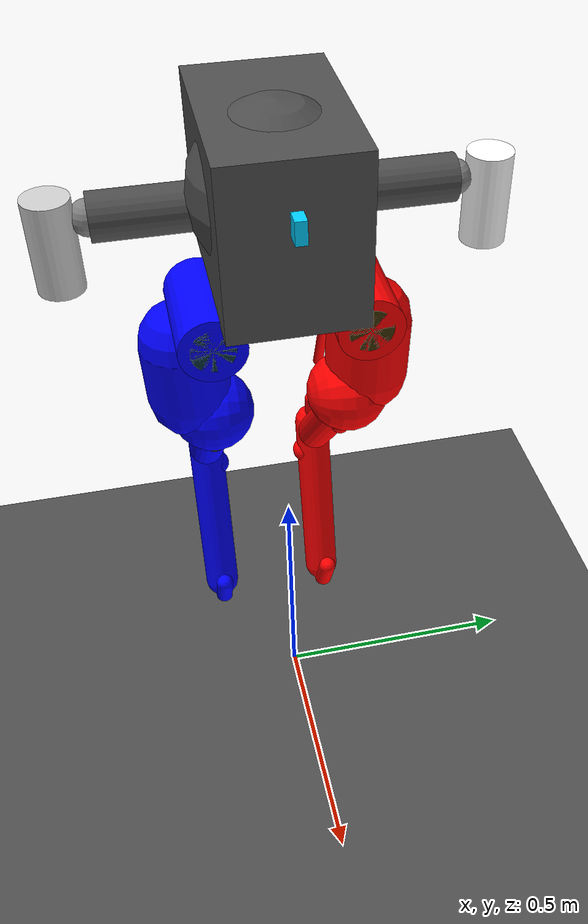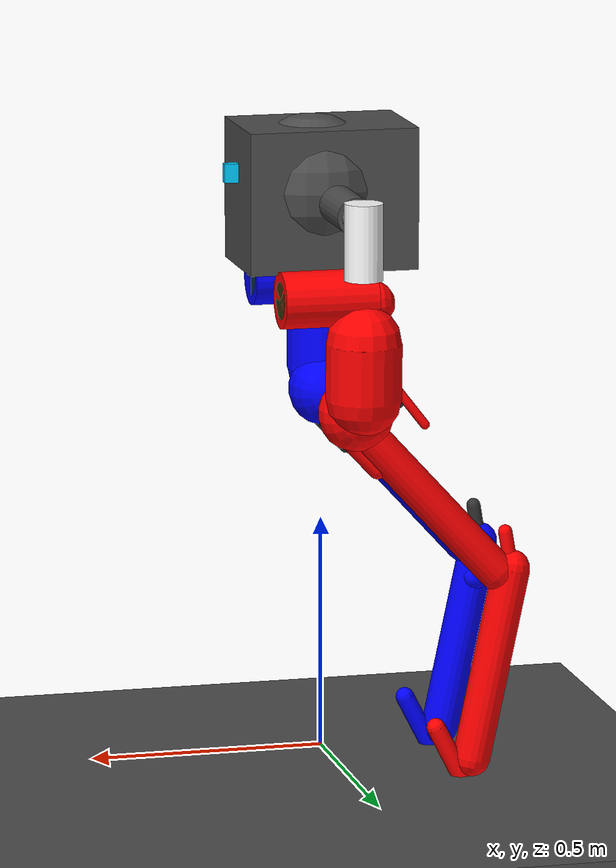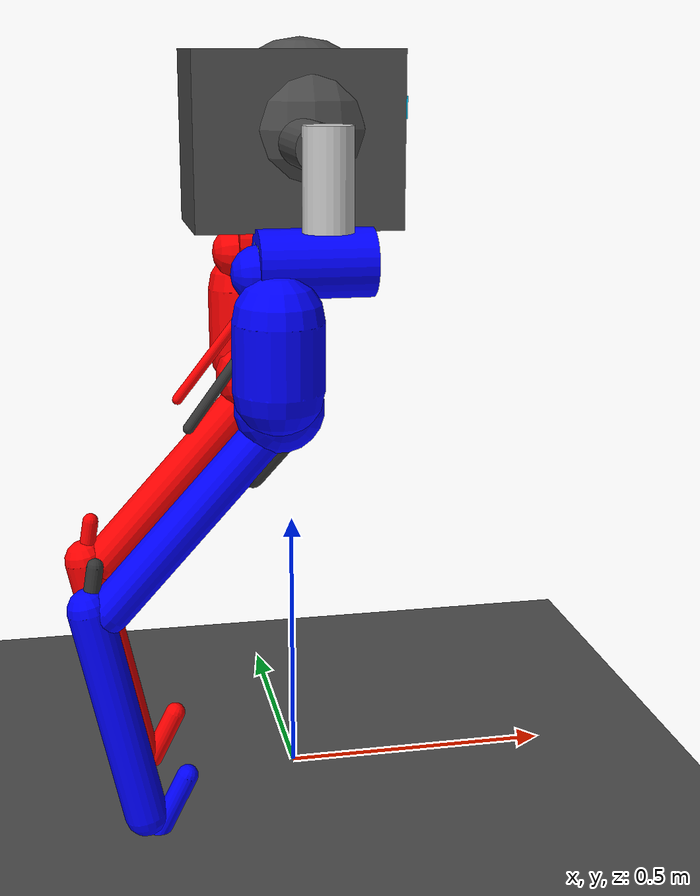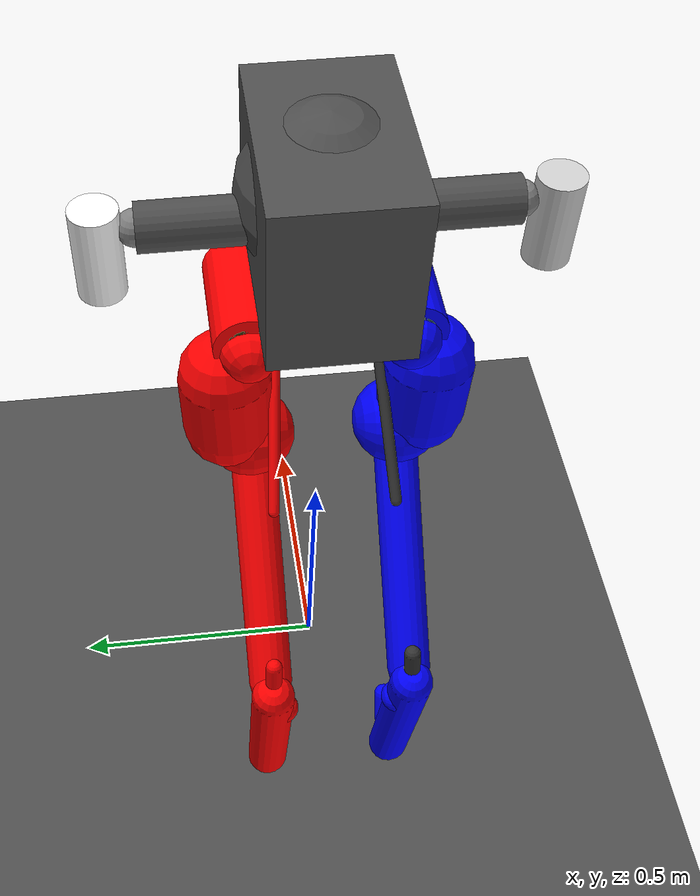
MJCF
<?xml version="1.0" ?>
<mujoco model="harpy_sophisticated_complete">
  <compiler angle="degree" coordinate="local" inertiafromgeom="true"/>
  <default>
    <joint armature="0.01" damping="0.1" limited="true"/>
    <geom conaffinity="0" condim="3" density="5.0" friction="1 0.5 0.001" rgba="0.3 0.3 0.3 1"/>
    <motor ctrllimited="true" ctrlrange="-1 1"/>
    <default class='collision'>
      <!-- User parameter for geoms is used to identify collision types -->
      <geom material='collision' contype='1' user='2'/>
    </default>
    <default class='collision_left'>
      <geom contype='2' conaffinity='4'/>
    </default>
    <default class='collision_right'>
      <geom contype='4' conaffinity='2'/>
    </default>
    <default class='obstacle'>
      <geom material='obstacle' condim='3' contype='8' conaffinity='15' user='1'/>
    </default>
  </default>

  <option gravity="0 0 -9.81" integrator="RK4" timestep="0.0005" tolerance="1e-8" solver="Newton" iterations="100" jacobian="dense"/>

  <visual>
    <global offwidth="1200" offheight="800"/>
    <quality shadowsize='4096'/>
    <map znear='0.05'/>
  </visual>

  <asset>
    <texture type='skybox' builtin='gradient' width='128' height='128' rgb1='0.4 0.6 0.8' rgb2='0 0 0'/>
    <texture name="plane" type="2d" builtin="checker" rgb1="0.2 0.2 0.2" rgb2="0.3 0.3 0.3" width="512" height="512"/>
    <material name="plane" texture="plane" texrepeat="8 8" reflectance="0.2" texuniform="true"/>
    <material name='collision' rgba='0.1 0.5 0.9 0'/>
    <material name='obstacle'  rgba='0.2 0.6 0.2 1'/>
    <hfield name="hill" nrow='512' ncol='512' size="60 60 2 1"/>
  </asset>

  <worldbody>
    <light cutoff="100" diffuse="1 1 1" dir="0 0 -1" directional="true" exponent="1" pos="0 0 4" specular="0.1 0.1 0.1"/>
    <geom name="floor" pos="0 0 -0.1" size="10 10 0.05" type="box" material="plane" condim="3" conaffinity="15" friction="1.0 0.5 0.001"/>

    <!-- Main robot body - Compact Rectangular Torso (True Harpy Design) -->
    <body name="harpy-torso" pos="0 0 1.2">
      <!-- Main torso body (compact rectangular/block structure) -->
      <inertial pos='0 0 0' mass='8.0' diaginertia='0.1 0.1 0.1'/>
      <joint type='slide' axis='1 0 0' limited='false'/>
      <joint type='slide' axis='0 1 0' limited='false'/>
      <joint type='slide' axis='0 0 1' limited='false' ref='1.2'/>
      <joint type='ball' limited='false'/>

      <!-- Main torso - compact rectangular/block structure -->
      <geom type='box' size='0.18 0.12 0.15' pos='0 0 0' rgba='0.3 0.3 0.3 1'/>

      <!-- FRONT SIDE INDICATORS -->
      <!-- Front LED strip (bright blue) -->
      <geom type='box' size='0.12 0.01 0.02' pos='0.09 0 0.05' rgba='0.0 0.8 1.0 1'/>
      <!-- Front camera/sensor housing -->
      <geom type='cylinder' size='0.03 0.02' pos='0.09 0 0' rgba='0.1 0.1 0.1 1'/>
      <!-- Front directional arrow -->
      <geom type='box' size='0.04 0.01 0.01' pos='0.08 0.03 0.02' rgba='1.0 0.3 0.3 1'/>
      <geom type='box' size='0.02 0.02 0.01' pos='0.07 0.025 0.02' rgba='1.0 0.3 0.3 1'/>

      <!-- Control system mounting points (visible details) -->
      <geom type='box' size='0.15 0.08 0.02' pos='0 0 0.06' rgba='0.1 0.4 0.1 0.8'/>
      <geom type='box' size='0.12 0.06 0.02' pos='0 0 -0.05' rgba='0.2 0.2 0.4 0.8'/>

      <geom type='sphere' size='0.15' pos='0.02 0 0.02' class='collision'/>
      <!-- IMU sensor site -->
      <site name='imu' size='0.01' pos='0 0 0'/>

      <!-- === THRUSTER MOUNTING SYSTEM (Extension bars from center) === -->

      <!-- LEFT EXTENSION BAR - connecting cylinder to left side face of torso -->
      <body name="left_extension_bar" pos="-0.15 0.12 0.0" xyaxes="1 0 0 0 0 1">
          <inertial pos="0 0 0" mass="0.3" diaginertia="0.001 0.001 0.001"/>
          <geom name="left_extension_geom" type="cylinder" size="0.04 0.18" pos="0.15 0 0" rgba="0.3 0.3 0.3 1" class='collision'/>

          <!-- LEFT THRUSTER PITCH JOINT - shoulder joint at center of far end face -->
          <body name='left-thruster-pitch' pos='0.15 0 -0.18' xyaxes='1 0 0 0 0 1'>
            <inertial pos='0 0 0' mass='0.5' diaginertia='0.001 0.001 0.001'/>
            <joint name='thruster_left_pitch' type='hinge' range='-90 90' axis="0 1 0" damping='1' armature='0.05'/>
            <!-- Shoulder joint geometry -->
            <geom type='sphere' size='0.03' pos='0 0 0' rgba='0.5 0.5 0.5 1'/>

              <!-- Thruster housing -->
              <body name="thruster_left" pos="0 0 -0.08">
                  <inertial pos="0 0 0" mass="0.3" diaginertia="0.0005 0.0005 0.0005"/>

                  <geom name="thruster_left_housing" type="cylinder"
                        size="0.04 0.08"
                        pos="0 -0.06 0.12"
                        rgba="1.0 1.0 1.0 1"
                        class="collision"/>

                  <!-- Thruster force site -->
                  <site name="thruster_left_site"
                        pos="0 -0.06 0.08"
                        size="0.01"
                        type="sphere"
                        rgba="1 0 0 0.5"/>
              </body>
          </body>
      </body>

      <!-- RIGHT EXTENSION BAR - connecting cylinder to right side face of torso -->
      <body name="right_extension_bar" pos="-0.15 -0.12 0.0" xyaxes="1 0 0 0 0 1">
          <inertial pos="0 0 0" mass="0.3" diaginertia="0.001 0.001 0.001"/>
          <geom name="right_extension_geom" type="cylinder" size="0.04 0.18" pos="0.15 0 0" rgba="0.3 0.3 0.3 1" class='collision'/>

          <!-- RIGHT THRUSTER PITCH JOINT - at far end of extension rod (away from torso) -->
          <body name="thruster_right_pitch" pos="0.15 0 0.18" xyaxes="1 0 0 0 0 1">
              <inertial pos="0 0 0" mass="0.5" diaginertia="0.001 0.001 0.001"/>
              <joint name="thruster_right_pitch" type="hinge" range="-90 90" axis="0 1 0" damping="1" armature="0.05"/>

              <!-- Shoulder joint geometry -->
              <geom type='sphere' size='0.03' pos='0 0 0' rgba='0.5 0.5 0.5 1'/>

              <!-- Thruster housing -->
              <body name="thruster_right" pos="0 0 -0.08">
                  <inertial pos="0 0 0" mass="0.3" diaginertia="0.0005 0.0005 0.0005"/>

                  <geom name="thruster_right_housing" type="cylinder"
                        size="0.04 0.08"
                        pos="0 0.06 0.12"
                        rgba="0.8 0.8 0.8 1"
                        class="collision"/>

                  <!-- Thruster force site -->
                  <site name="thruster_right_site"
                        pos="0 0.06 0.08"
                        size="0.01"
                        type="sphere"
                        rgba="1 0 0 0.5"/>
              </body>
          </body>
      </body>

      <!-- COMPLETE CASSIE LEG STRUCTURE - LEFT LEG -->
      <body name='left-hip-roll' pos='0.021 0.135 -0.2' xyaxes='0 0 -1 0 1 0'>
        <inertial pos='-0.01793 0.0001 -0.04428' mass='1.82' fullinertia='0.003431 0.003793 0.002135 -6.65e-07 -0.00084 3.99e-06'/>
        <joint name='left-hip-roll' type='hinge' range='-15 22.5' damping='1' armature='0.038125'/>
        <!-- Sophisticated hip roll geometry -->
        <geom type='cylinder' size='0.06 0.1' pos='0 0 0' rgba='1.0 0.0 0.0 1'/>
        <!-- Visible gears/internal workings -->
        <geom type='cylinder' size='0.04 0.02' pos='0 0 0.08' rgba='0.1 0.3 0.1 0.8'/>
        <geom type='cylinder' size='0.04 0.02' pos='0 0 -0.08' rgba='0.1 0.3 0.1 0.8'/>

        <body name='left-hip-yaw' pos='0 0 -0.07' xyaxes='0 0 1 0 1 0'>
          <inertial pos='0 -1e-05 -0.034277' mass='1.171' fullinertia='0.002443 0.002803 0.000842 -4e-08 2.462e-07 -2.71e-08'/>
          <joint name='left-hip-yaw' type='hinge' range='-22.5 22.5' damping='1' armature='0.038125'/>
          <!-- Sophisticated hip yaw geometry -->
          <geom type='capsule' size='0.05' fromto='-0.025 0 -0.015 0.025 0 -0.015' rgba='1.0 0.0 0.0 1'/>

          <body name='left-hip-pitch' pos='0 0 -0.09' xyaxes='0 0 -1 1 0 0'>
            <inertial pos='0.05946 5e-05 -0.03581' mass='5.52' fullinertia='0.010898 0.029714 0.030257 -0.0002669 -5.721e-05 9.17e-06'/>
            <joint name='left-hip-pitch' type='hinge' range='-50 80' damping='1' armature='0.09344'/>
            <!-- Sophisticated hip pitch geometry -->
            <geom type='capsule' size='0.08' fromto='0 0 -0.04 0.12 0 -0.0355' rgba='1.0 0.0 0.0 1' class='collision'/>

            <body name='left-achilles-rod' pos='0 0 0.045' xyaxes='0.7922 -0.60599 -0.072096 0.60349 0.79547 -0.054922'>
              <inertial pos='0.24719 0 0' mass='0.1567' fullinertia='3.754e-06 0.004487 0.004488 -3.74e-08 -1.61e-08 0'/>
              <joint name='left-achilles-rod' type='ball' limited='false' damping='0.01'/>
              <!-- Sophisticated achilles rod -->
              <geom type='capsule' size='0.01' fromto='0 0 0 0.24719 0 0' rgba='1.0 0.0 0.0 1'/>
            </body>

            <body name='left-knee' pos='0.12 0 0.0045' xyaxes='0.70711 -0.70711 0 0.70711 0.70711 0'>
              <inertial pos='0.023 0.03207 -0.002181' mass='0.7578' fullinertia='0.001376 0.0010335 0.0021637 -0.00039744 -4.085e-05 -5.374e-05'/>
              <joint name='left-knee' type='hinge' ref='-45' range='-164 -37' damping='1' armature='0.09344'/>
              <!-- Sophisticated knee joint -->
              <geom type='sphere' size='0.08' pos='0.023 0.03207 -0.002181' rgba='1.0 0.0 0.0 1'/>

              <body name='left-knee-spring' pos='0.06068 0.08241 0'>
                <inertial pos='0.0836 0.0034 0' mass='0.186' fullinertia='5.215e-05 0.00041205 0.0003669 6.87e-06 0 0'/>
                <!-- Sophisticated knee spring -->
                <geom type='capsule' size='0.02' fromto='0 0 0 0.0836 0.0034 0' rgba='1.0 0.0 0.0 1'/>
              </body>

              <body name='left-shin' pos='0.06068 0.04741 0'>
                <inertial pos='0.18338 0.001169 0.0002123' mass='0.577' fullinertia='0.00035939 0.014728 0.014707 -0.00020981 2.266e-05 -1.2e-07'/>
                <joint name='left-shin' type='hinge' range='-20 20' stiffness='1500' damping='0.1'/>
                <!-- Sophisticated shin -->
                <geom type='capsule' size='0.04' fromto='0 0 0 0.43476 0.02 0' rgba='1.0 0.0 0.0 1' class='collision'/>

                <body name='left-tarsus' pos='0.43476 0.02 0' xyaxes='0.52992 0.84805 0 -0.84805 0.52992 0'>
                  <inertial pos='0.11046 -0.03058 -0.00131' mass='0.782' fullinertia='0.00039238 0.013595 0.013674 0.00023651 -4.987e-05 -4.82e-06'/>
                  <joint name='left-tarsus' type='hinge' ref='58' range='50 170' damping='0.1'/>
                  <!-- Sophisticated tarsus -->
                  <geom type='capsule' size='0.04' fromto='-0.01269 -0.03059 0.00092 0.408 -0.04 0' rgba='1.0 0.0 0.0 1' class='collision'/>

                  <body name='left-heel-spring' pos='-0.01269 -0.03059 0.00092' xyaxes='-0.91211 0.40829 0.036948 -0.40992 -0.90952 -0.068841'>
                    <inertial pos='0.081 0.0022 0' mass='0.126' fullinertia='2.959e-05 0.00022231 0.0002007 7.15e-06 -6e-07 1e-07'/>
                    <joint name='left-heel-spring' type='hinge' limited='false' stiffness='1250'/>
                    <!-- Sophisticated heel spring -->
                    <geom type='capsule' size='0.015' fromto='0 0 0 0.081 0.0022 0' rgba='1.0 0.0 0.0 1'/>
                  </body>

                  <body name='left-foot-crank' pos='0.058 -0.034 0.02275'>
                    <inertial pos='0.00493 2e-05 -0.00215' mass='0.1261' fullinertia='2.6941e-05 4.9621e-05 6.3362e-05 -2.1e-09 -3.9623e-06 -1.09e-08'/>
                    <joint name='left-foot-crank' type='hinge' range='-140 -30' damping='1'/>
                    <!-- Sophisticated foot crank -->
                    <geom type='sphere' size='0.03' pos='0.00493 2e-05 -0.00215' rgba='1.0 0.0 0.0 1'/>

                    <body name='left-plantar-rod' pos='0.055 0 -0.00791'>
                      <inertial pos='0.17792 0 0' mass='0.1186' fullinertia='2.779e-06 0.001774 0.001775 -2.34e-08 -8.1e-09 0'/>
                      <joint name='left-plantar-rod' type='hinge' limited='false'/>
                      <!-- Sophisticated plantar rod -->
                      <geom type='capsule' size='0.008' fromto='0 0 0 0.17792 0 0' rgba='1.0 0.0 0.0 1'/>
                    </body>
                  </body>

                  <body name='left-foot' pos='0.408 -0.04 0'>
                    <inertial pos='0.00474 0.02748 -0.00014' mass='0.1498' fullinertia='0.00017388 0.00016793 0.00033261 0.00011814 1.36e-06 -4e-07'/>
                    <joint name='left-foot' type='hinge' range='-140 -30' damping='1' armature='0.01225'/>
                    <!-- Sophisticated foot -->
                    <geom type='capsule' size='0.02' fromto='-0.052821 0.092622 0 0.069746 -0.010224 0' rgba='1.0 0.0 0.0 1' friction='1.0 0.5 0.001' class='collision_left'/>
                  </body>
                </body>
              </body>
            </body>
          </body>
        </body>
      </body>

      <!-- COMPLETE CASSIE LEG STRUCTURE - RIGHT LEG -->
      <body name='right-hip-roll' pos='0.021 -0.135 -0.2' xyaxes='0 0 -1 0 1 0'>
        <inertial pos='-0.01793 0.0001 -0.04428' mass='1.82' fullinertia='0.003431 0.003793 0.002135 6.65e-07 -0.00084 -3.99e-06'/>
        <joint name='right-hip-roll' type='hinge' range='-22.5 15' damping='1' armature='0.038125'/>
        <!-- Sophisticated hip roll geometry (mirrored) -->
        <geom type='cylinder' size='0.06 0.1' pos='0 0 0' rgba='0.0 0.0 1.0 1'/>
        <!-- Visible gears/internal workings -->
        <geom type='cylinder' size='0.04 0.02' pos='0 0 0.08' rgba='0.1 0.3 0.1 0.8'/>
        <geom type='cylinder' size='0.04 0.02' pos='0 0 -0.08' rgba='0.1 0.3 0.1 0.8'/>

        <body name='right-hip-yaw' pos='0 0 -0.07' xyaxes='0 0 1 0 1 0'>
          <inertial pos='0 1e-05 -0.034277' mass='1.171' fullinertia='0.002443 0.002803 0.000842 4e-08 2.462e-07 2.71e-08'/>
          <joint name='right-hip-yaw' type='hinge' range='-22.5 22.5' damping='1' armature='0.038125'/>
          <!-- Sophisticated hip yaw geometry (mirrored) -->
          <geom type='capsule' size='0.05' fromto='-0.025 0 -0.015 0.025 0 -0.015' rgba='0.0 0.0 1.0 1'/>

          <body name='right-hip-pitch' pos='0 0 -0.09' xyaxes='0 0 -1 1 0 0'>
            <inertial pos='0.05946 5e-05 0.03581' mass='5.52' fullinertia='0.010898 0.029714 0.030257 -0.0002669 5.721e-05 -9.17e-06'/>
            <joint name='right-hip-pitch' type='hinge' range='-50 80' damping='1' armature='0.09344'/>
            <!-- Sophisticated hip pitch geometry (mirrored) -->
            <geom type='capsule' size='0.08' fromto='0 0 0.04 0.12 0 0.0355' rgba='0.0 0.0 1.0 1' class='collision'/>

            <body name='right-achilles-rod' pos='0 0 -0.045' xyaxes='0.7922 -0.60599 0.072096 0.60349 0.79547 0.054922'>
              <inertial pos='0.24719 0 0' mass='0.1567' fullinertia='3.754e-06 0.004487 0.004488 -3.74e-08 1.61e-08 0'/>
              <joint name='right-achilles-rod' type='ball' limited='false' damping='0.01'/>
              <!-- Sophisticated achilles rod (mirrored) -->
              <geom type='capsule' size='0.01' fromto='0 0 0 0.24719 0 0' rgba='0.2 0.2 0.2 1'/>
            </body>

            <body name='right-knee' pos='0.12 0 -0.0045' xyaxes='0.70711 -0.70711 0 0.70711 0.70711 0'>
              <inertial pos='0.023 0.03207 0.002181' mass='0.7578' fullinertia='0.001376 0.0010335 0.0021637 -0.00039744 4.085e-05 5.374e-05'/>
              <joint name='right-knee' type='hinge' ref='-45' range='-164 -37' damping='1' armature='0.09344'/>
              <!-- Sophisticated knee joint (mirrored) -->
              <geom type='sphere' size='0.08' pos='0.023 0.03207 0.002181' rgba='0.0 0.0 1.0 1'/>

              <body name='right-knee-spring' pos='0.06068 0.08241 0'>
                <inertial pos='0.0836 0.0034 0' mass='0.186' fullinertia='5.215e-05 0.00041205 0.0003669 6.87e-06 0 0'/>
                <!-- Sophisticated knee spring (mirrored) -->
                <geom type='capsule' size='0.02' fromto='0 0 0 0.0836 0.0034 0' rgba='0.2 0.2 0.2 1'/>
              </body>

              <body name='right-shin' pos='0.06068 0.04741 0'>
                <inertial pos='0.18338 0.001169 -0.0002123' mass='0.577' fullinertia='0.00035939 0.014728 0.014707 -0.00020981 -2.266e-05 1.2e-07'/>
                <joint name='right-shin' type='hinge' range='-20 20' stiffness='1500' damping='0.1'/>
                <!-- Sophisticated shin (mirrored) -->
                <geom type='capsule' size='0.04' fromto='0 0 0 0.43476 0.02 0' rgba='0.0 0.0 1.0 1' class='collision'/>

                <body name='right-tarsus' pos='0.43476 0.02 0' xyaxes='0.52992 0.84805 0 -0.84805 0.52992 0'>
                  <inertial pos='0.11046 -0.03058 0.00131' mass='0.782' fullinertia='0.00039238 0.013595 0.013674 0.00023651 4.987e-05 4.82e-06'/>
                  <joint name='right-tarsus' type='hinge' ref='58' range='50 170' damping='0.1'/>
                  <!-- Sophisticated tarsus (mirrored) -->
                  <geom type='capsule' size='0.04' fromto='-0.01269 -0.03059 -0.00092 0.408 -0.04 0' rgba='0.0 0.0 1.0 1' class='collision'/>

                  <body name='right-heel-spring' pos='-0.01269 -0.03059 -0.00092' xyaxes='-0.91211 0.40829 -0.036948 -0.40992 -0.90952 0.068841'>
                    <inertial pos='0.081 0.0022 0' mass='0.126' fullinertia='2.959e-05 0.00022231 0.0002007 7.15e-06 6e-07 -1e-07'/>
                    <joint name='right-heel-spring' type='hinge' limited='false' stiffness='1250'/>
                    <!-- Sophisticated heel spring (mirrored) -->
                    <geom type='capsule' size='0.015' fromto='0 0 0 0.081 0.0022 0' rgba='0.2 0.2 0.2 1'/>
                  </body>

                  <body name='right-foot-crank' pos='0.058 -0.034 -0.02275'>
                    <inertial pos='0.00493 2e-05 0.00215' mass='0.1261' fullinertia='2.6941e-05 4.9621e-05 6.3362e-05 -2.1e-09 3.9623e-06 1.09e-08'/>
                    <joint name='right-foot-crank' type='hinge' range='-140 -30' damping='1'/>
                    <!-- Sophisticated foot crank (mirrored) -->
                    <geom type='sphere' size='0.03' pos='0.00493 2e-05 0.00215' rgba='0.0 0.0 1.0 1'/>

                    <body name='right-plantar-rod' pos='0.055 0 0.00791'>
                      <inertial pos='0.17792 0 0' mass='0.1186' fullinertia='2.779e-06 0.001774 0.001775 -2.34e-08 8.1e-09 0'/>
                      <joint name='right-plantar-rod' type='hinge' limited='false'/>
                      <!-- Sophisticated plantar rod (mirrored) -->
                      <geom type='capsule' size='0.008' fromto='0 0 0 0.17792 0 0' rgba='0.2 0.2 0.2 1'/>
                    </body>
                  </body>

                  <body name='right-foot' pos='0.408 -0.04 0'>
                    <inertial pos='0.00474 0.02748 0.00014' mass='0.1498' fullinertia='0.00017388 0.00016793 0.00033261 0.00011814 -1.36e-06 4e-07'/>
                    <joint name='right-foot' type='hinge' range='-140 -30' damping='1' armature='0.01225'/>
                    <!-- Sophisticated foot (mirrored) -->
                    <geom type='capsule' size='0.02' fromto='-0.052821 0.092622 0 0.069746 -0.010224 0' rgba='0.0 0.0 1.0 1' friction='1.0 0.5 0.001' class='collision_right'/>
                  </body>
                </body>
              </body>
            </body>
          </body>
        </body>
      </body>
    </body>
  </worldbody>

  <actuator>
    <!-- Sophisticated thruster pitch actuators -->
    <motor joint='thruster_left_pitch' name='thruster-left-pitch-motor' gear='50'/>
    <motor joint='thruster_right_pitch' name='thruster-right-pitch-motor' gear='50'/>

    <!-- Complete Cassie leg actuators -->
    <motor joint='left-hip-roll' name='left-hip-roll-motor' gear='50'/>
    <motor joint='left-hip-yaw' name='left-hip-yaw-motor' gear='50'/>
    <motor joint='left-hip-pitch' name='left-hip-pitch-motor' gear='50'/>
    <motor joint='left-knee' name='left-knee-motor' gear='50'/>
    <motor joint='left-foot-crank' name='left-foot-crank-motor' gear='50'/>
    <motor joint='left-foot' name='left-foot-motor' gear='50'/>
    <motor joint='right-hip-roll' name='right-hip-roll-motor' gear='50'/>
    <motor joint='right-hip-yaw' name='right-hip-yaw-motor' gear='50'/>
    <motor joint='right-hip-pitch' name='right-hip-pitch-motor' gear='50'/>
    <motor joint='right-knee' name='right-knee-motor' gear='50'/>
    <motor joint='right-foot-crank' name='right-foot-crank-motor' gear='50'/>
    <motor joint='right-foot' name='right-foot-motor' gear='50'/>
  </actuator>

  <sensor>
    <!-- Sophisticated thruster pitch sensors -->
    <jointpos joint='thruster_left_pitch' name='thruster-left-pitch-pos'/>
    <jointpos joint='thruster_right_pitch' name='thruster-right-pitch-pos'/>
    <jointvel joint='thruster_left_pitch' name='thruster-left-pitch-vel'/>
    <jointvel joint='thruster_right_pitch' name='thruster-right-pitch-vel'/>

    <!-- Complete Cassie leg position sensors -->
    <jointpos joint='left-hip-roll' name='left-hip-roll-pos'/>
    <jointpos joint='left-hip-yaw' name='left-hip-yaw-pos'/>
    <jointpos joint='left-hip-pitch' name='left-hip-pitch-pos'/>
    <jointpos joint='left-knee' name='left-knee-pos'/>
    <jointpos joint='left-foot-crank' name='left-foot-crank-pos'/>
    <jointpos joint='left-foot' name='left-foot-pos'/>
    <jointpos joint='right-hip-roll' name='right-hip-roll-pos'/>
    <jointpos joint='right-hip-yaw' name='right-hip-yaw-pos'/>
    <jointpos joint='right-hip-pitch' name='right-hip-pitch-pos'/>
    <jointpos joint='right-knee' name='right-knee-pos'/>
    <jointpos joint='right-foot-crank' name='right-foot-crank-pos'/>
    <jointpos joint='right-foot' name='right-foot-pos'/>

    <!-- Complete Cassie leg velocity sensors -->
    <jointvel joint='left-hip-roll' name='left-hip-roll-vel'/>
    <jointvel joint='left-hip-yaw' name='left-hip-yaw-vel'/>
    <jointvel joint='left-hip-pitch' name='left-hip-pitch-vel'/>
    <jointvel joint='left-knee' name='left-knee-vel'/>
    <jointvel joint='left-foot-crank' name='left-foot-crank-vel'/>
    <jointvel joint='left-foot' name='left-foot-vel'/>
    <jointvel joint='right-hip-roll' name='right-hip-roll-vel'/>
    <jointvel joint='right-hip-yaw' name='right-hip-yaw-vel'/>
    <jointvel joint='right-hip-pitch' name='right-hip-pitch-vel'/>
    <jointvel joint='right-knee' name='right-knee-vel'/>
    <jointvel joint='right-foot-crank' name='right-foot-crank-vel'/>
    <jointvel joint='right-foot' name='right-foot-vel'/>

    <!-- IMU sensors -->
    <accelerometer site='imu' name='main-body-accel'/>
    <gyro site='imu' name='main-body-gyro'/>
  </sensor>
</mujoco>
